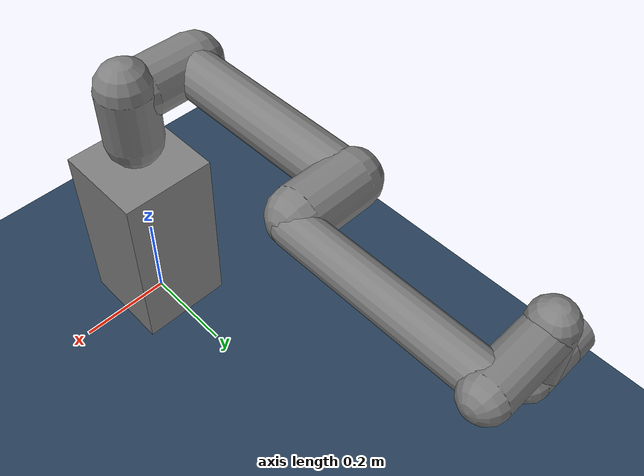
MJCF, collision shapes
<mujoco model="ur5e">
  <compiler angle="radian" meshdir="assets" autolimits="true"/>

  <option integrator="implicitfast" actuatorgroupdisable="1 2"/>

  <default>
    <default class="ur5e">
      <material specular="0.5" shininess="0.25"/>
      <joint axis="0 1 0" range="-6.28319 6.28319" armature="0.1"/>

      <default class="size3">
        <default class="size3_limited">
          <joint range="-3.1415 3.1415"/>

        </default>
      </default>
      <default class="size1">

      </default>
      <default class="visual">
        <geom type="mesh" contype="0" conaffinity="0" group="2"/>
      </default>
      <default class="collision">
        <geom type="capsule" group="3"/>
        <default class="eef_collision">
          <geom type="cylinder"/>
        </default>
      </default>
      <site size="0.001" rgba="0.5 0.5 0.5 0.3" group="4"/>
    </default>
  </default>

  <asset>
    <material class="ur5e" name="black" rgba="0.033 0.033 0.033 1"/>
    <material class="ur5e" name="jointgray" rgba="0.278 0.278 0.278 1"/>
    <material class="ur5e" name="linkgray" rgba="0.82 0.82 0.82 1"/>
    <material class="ur5e" name="urblue" rgba="0.49 0.678 0.8 1"/>

    <texture name="grid" type="2d" builtin="checker" width="512" height="512" rgb1=".1 .2 .3" rgb2=".2 .3 .4"/>
    <material name="grid" texture="grid" texrepeat="1 1" texuniform="true" reflectance=".2"/>

    <mesh file="base_0.obj"/>
    <mesh file="base_1.obj"/>
    <mesh file="shoulder_0.obj"/>
    <mesh file="shoulder_1.obj"/>
    <mesh file="shoulder_2.obj"/>
    <mesh file="upperarm_0.obj"/>
    <mesh file="upperarm_1.obj"/>
    <mesh file="upperarm_2.obj"/>
    <mesh file="upperarm_3.obj"/>
    <mesh file="forearm_0.obj"/>
    <mesh file="forearm_1.obj"/>
    <mesh file="forearm_2.obj"/>
    <mesh file="forearm_3.obj"/>
    <mesh file="wrist1_0.obj"/>
    <mesh file="wrist1_1.obj"/>
    <mesh file="wrist1_2.obj"/>
    <mesh file="wrist2_0.obj"/>
    <mesh file="wrist2_1.obj"/>
    <mesh file="wrist2_2.obj"/>
    <mesh file="wrist3.obj"/>
  </asset>

  <worldbody>
    <geom name="floor" size="0 0 .05" type="plane" material="grid" condim="3"/>
    <light name="spotlight" mode="targetbodycom" target="wrist_2_link" pos="0 -1 2"/>
    <body name="platform">
      <geom name="platform" pos="0 0 0.2" size="0.1 0.1 0.2" type="box"/>
      <body name="base" quat="1 0 0 1" pos="0 0 0.4" childclass="ur5e">
        <inertial mass="4.0" pos="0 0 0" diaginertia="0.00443333156 0.00443333156 0.0072"/>
        <geom mesh="base_0" material="black" class="visual"/>
        <geom mesh="base_1" material="jointgray" class="visual"/>
        <body name="shoulder_link" pos="0 0 0.163">
          <inertial mass="3.7" pos="0 0 0" diaginertia="0.0102675 0.0102675 0.00666"/>
          <joint name="shoulder_pan_joint" class="size3" axis="0 0 1"/>
          <geom mesh="shoulder_0" material="urblue" class="visual"/>
          <geom mesh="shoulder_1" material="black" class="visual"/>
          <geom mesh="shoulder_2" material="jointgray" class="visual"/>
          <geom class="collision" size="0.06 0.06" pos="0 0 -0.04"/>
          <body name="upper_arm_link" pos="0 0.138 0" quat="1 0 1 0">
            <inertial mass="8.393" pos="0 0 0.2125" diaginertia="0.133886 0.133886 0.0151074"/>
            <joint name="shoulder_lift_joint" class="size3"/>
            <geom mesh="upperarm_0" material="linkgray" class="visual"/>
            <geom mesh="upperarm_1" material="black" class="visual"/>
            <geom mesh="upperarm_2" material="jointgray" class="visual"/>
            <geom mesh="upperarm_3" material="urblue" class="visual"/>
            <geom class="collision" pos="0 -0.04 0" quat="1 1 0 0" size="0.06 0.06"/>
            <geom class="collision" size="0.05 0.2" pos="0 0 0.2"/>
            <body name="forearm_link" pos="0 -0.131 0.425">
              <inertial mass="2.275" pos="0 0 0.196" diaginertia="0.0311796 0.0311796 0.004095"/>
              <joint name="elbow_joint" class="size3_limited"/>
              <geom mesh="forearm_0" material="urblue" class="visual"/>
              <geom mesh="forearm_1" material="linkgray" class="visual"/>
              <geom mesh="forearm_2" material="black" class="visual"/>
              <geom mesh="forearm_3" material="jointgray" class="visual"/>
              <geom class="collision" pos="0 0.08 0" quat="1 1 0 0" size="0.055 0.06"/>
              <geom class="collision" size="0.038 0.19" pos="0 0 0.2"/>
              <body name="wrist_1_link" pos="0 0 0.392" quat="1 0 1 0">
                <inertial mass="1.219" pos="0 0.127 0" diaginertia="0.0025599 0.0025599 0.0021942"/>
                <joint name="wrist_1_joint" class="size1"/>
                <geom mesh="wrist1_0" material="black" class="visual"/>
                <geom mesh="wrist1_1" material="urblue" class="visual"/>
                <geom mesh="wrist1_2" material="jointgray" class="visual"/>
                <geom class="collision" pos="0 0.05 0" quat="1 1 0 0" size="0.04 0.07"/>
                <body name="wrist_2_link" pos="0 0.127 0">
                  <inertial mass="1.219" pos="0 0 0.1" diaginertia="0.0025599 0.0025599 0.0021942"/>
                  <joint name="wrist_2_joint" axis="0 0 1" class="size1"/>
                  <geom mesh="wrist2_0" material="black" class="visual"/>
                  <geom mesh="wrist2_1" material="urblue" class="visual"/>
                  <geom mesh="wrist2_2" material="jointgray" class="visual"/>
                  <geom class="collision" size="0.04 0.06" pos="0 0 0.04"/>
                  <geom class="collision" pos="0 0.02 0.1" quat="1 1 0 0" size="0.04 0.04"/>
                  <body name="wrist_3_link" pos="0 0 0.1">
                    <inertial mass="0.1889" pos="0 0.0771683 0" quat="1 0 0 1"
                      diaginertia="0.000132134 9.90863e-05 9.90863e-05"/>
                    <joint name="wrist_3_joint" class="size1"/>
                    <geom material="linkgray" mesh="wrist3" class="visual"/>
                    <geom class="eef_collision" pos="0 0.08 0" quat="1 1 0 0" size="0.04 0.02"/>
                    <site name="attachment_site" pos="0 0.1 0" quat="-1 1 0 0"/>
                  </body>
                </body>
              </body>
            </body>
          </body>
        </body>
      </body>
    </body>
  </worldbody>

  <actuator>
    <!-- Groups: 0 torque, 1 position, 2 velocity. Enable only one at a time. -->
    <motor name="shoulder_pan_torque" joint="shoulder_pan_joint" group="0" gear="1"
      ctrllimited="true" ctrlrange="-150 150" forcelimited="true" forcerange="-150 150"/>
    <motor name="shoulder_lift_torque" joint="shoulder_lift_joint" group="0" gear="1"
      ctrllimited="true" ctrlrange="-150 150" forcelimited="true" forcerange="-150 150"/>
    <motor name="elbow_torque" joint="elbow_joint" group="0" gear="1"
      ctrllimited="true" ctrlrange="-150 150" forcelimited="true" forcerange="-150 150"/>
    <motor name="wrist_1_torque" joint="wrist_1_joint" group="0" gear="1"
      ctrllimited="true" ctrlrange="-28 28" forcelimited="true" forcerange="-28 28"/>
    <motor name="wrist_2_torque" joint="wrist_2_joint" group="0" gear="1"
      ctrllimited="true" ctrlrange="-28 28" forcelimited="true" forcerange="-28 28"/>
    <motor name="wrist_3_torque" joint="wrist_3_joint" group="0" gear="1"
      ctrllimited="true" ctrlrange="-28 28" forcelimited="true" forcerange="-28 28"/>
    <position name="shoulder_pan_position" joint="shoulder_pan_joint" group="1" gear="1" kp="2000" kv="400"
      ctrllimited="true" ctrlrange="-6.2831 6.2831" forcelimited="true" forcerange="-150 150"/>
    <position name="shoulder_lift_position" joint="shoulder_lift_joint" group="1" gear="1" kp="2000" kv="400"
      ctrllimited="true" ctrlrange="-6.2831 6.2831" forcelimited="true" forcerange="-150 150"/>
    <position name="elbow_position" joint="elbow_joint" group="1" gear="1" kp="2000" kv="400"
      ctrllimited="true" ctrlrange="-3.1415 3.1415" forcelimited="true" forcerange="-150 150"/>
    <position name="wrist_1_position" joint="wrist_1_joint" group="1" gear="1" kp="500" kv="100"
      ctrllimited="true" ctrlrange="-6.2831 6.2831" forcelimited="true" forcerange="-28 28"/>
    <position name="wrist_2_position" joint="wrist_2_joint" group="1" gear="1" kp="500" kv="100"
      ctrllimited="true" ctrlrange="-6.2831 6.2831" forcelimited="true" forcerange="-28 28"/>
    <position name="wrist_3_position" joint="wrist_3_joint" group="1" gear="1" kp="500" kv="100"
      ctrllimited="true" ctrlrange="-6.2831 6.2831" forcelimited="true" forcerange="-28 28"/>
    <velocity name="shoulder_pan_velocity" joint="shoulder_pan_joint" group="2" gear="1" kv="400"
      ctrllimited="true" ctrlrange="-1.0 1.0" forcelimited="true" forcerange="-150 150"/>
    <velocity name="shoulder_lift_velocity" joint="shoulder_lift_joint" group="2" gear="1" kv="400"
      ctrllimited="true" ctrlrange="-1.0 1.0" forcelimited="true" forcerange="-150 150"/>
    <velocity name="elbow_velocity" joint="elbow_joint" group="2" gear="1" kv="400"
      ctrllimited="true" ctrlrange="-1.0 1.0" forcelimited="true" forcerange="-150 150"/>
    <velocity name="wrist_1_velocity" joint="wrist_1_joint" group="2" gear="1" kv="100"
      ctrllimited="true" ctrlrange="-1.0 1.0" forcelimited="true" forcerange="-28 28"/>
    <velocity name="wrist_2_velocity" joint="wrist_2_joint" group="2" gear="1" kv="100"
      ctrllimited="true" ctrlrange="-1.0 1.0" forcelimited="true" forcerange="-28 28"/>
    <velocity name="wrist_3_velocity" joint="wrist_3_joint" group="2" gear="1" kv="100"
      ctrllimited="true" ctrlrange="-1.0 1.0" forcelimited="true" forcerange="-28 28"/>
  </actuator>

  <keyframe>
    <key name="home" qpos="-1.5708 -1.5708 1.5708 -1.5708 -1.5708 0" ctrl="0 0 0 0 0 0 -1.5708 -1.5708 1.5708 -1.5708 -1.5708 0 0 0 0 0 0 0"/>
  </keyframe>
</mujoco>
